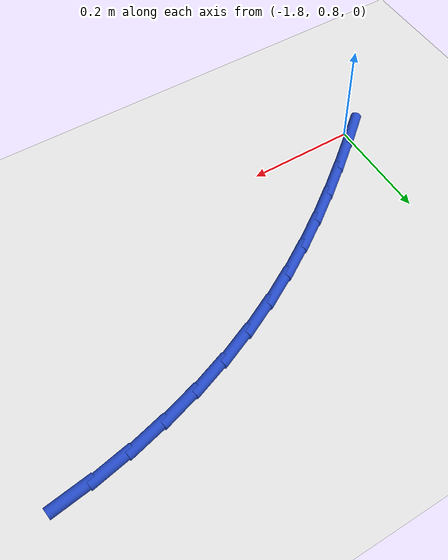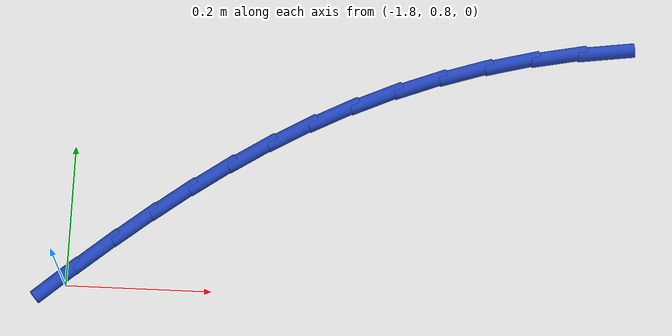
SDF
<sdf version="1.6">
 <world name="default">
  <model name="ground_plane">
   <static>1</static>
   <link name="link">
    <collision name="collision">
     <geometry><plane><normal>0 0 1</normal><size>100 100</size></plane></geometry>
     <surface><friction><ode><mu>100</mu><mu2>50</mu2></ode></friction></surface>
    </collision>
    <visual name="visual">
     <cast_shadows>0</cast_shadows>
     <geometry><plane><normal>0 0 1</normal><size>100 100</size></plane></geometry>
     <material>
      <script><uri>file://media/materials/scripts/gazebo.material</uri><name>Gazebo/WhiteGlow</name></script>
     </material>
    </visual>
   </link>
  </model>
  <model name="line">
   <link name="link_27">
    <pose>-1.0634239577203672 1.1670675608085976 0.01 0 1.57 0.13091968569776458</pose>
    <collision name="collision">
     <geometry><cylinder><radius>0.01</radius><length>0.08</length></cylinder></geometry>
    </collision>
    <visual name="visual">
     <material>
      <script><name>Gazebo/Blue</name><uri>file://media/materials/scripts/gazebo.material</uri></script>
     </material>
     <geometry><cylinder><radius>0.01</radius><length>0.08</length></cylinder></geometry>
    </visual>
   </link>
   <link name="link_28">
    <pose>-1.1293442459233956 1.158387649514622 0.01 0 1.57 0.19247990246002386</pose>
    <collision name="collision">
     <geometry><cylinder><radius>0.01</radius><length>0.08</length></cylinder></geometry>
    </collision>
    <visual name="visual">
     <material>
      <script><name>Gazebo/Blue</name><uri>file://media/materials/scripts/gazebo.material</uri></script>
     </material>
     <geometry><cylinder><radius>0.01</radius><length>0.08</length></cylinder></geometry>
    </visual>
   </link>
   <link name="link_29">
    <pose>-1.1947745047077671 1.1456357699586712 0.01 0 1.57 0.2513581036600441</pose>
    <collision name="collision">
     <geometry><cylinder><radius>0.01</radius><length>0.08</length></cylinder></geometry>
    </collision>
    <visual name="visual">
     <material>
      <script><name>Gazebo/Blue</name><uri>file://media/materials/scripts/gazebo.material</uri></script>
     </material>
     <geometry><cylinder><radius>0.01</radius><length>0.08</length></cylinder></geometry>
    </visual>
   </link>
   <link name="link_30">
    <pose>-1.2592359555957178 1.1290827735932252 0.01 0 1.57 0.3085339599397287</pose>
    <collision name="collision">
     <geometry><cylinder><radius>0.01</radius><length>0.08</length></cylinder></geometry>
    </collision>
    <visual name="visual">
     <material>
      <script><name>Gazebo/Blue</name><uri>file://media/materials/scripts/gazebo.material</uri></script>
     </material>
     <geometry><cylinder><radius>0.01</radius><length>0.08</length></cylinder></geometry>
    </visual>
   </link>
   <link name="link_31">
    <pose>-1.3222498201094839 1.1089995118707632 0.01 0 1.57 0.3649970647293606</pose>
    <collision name="collision">
     <geometry><cylinder><radius>0.01</radius><length>0.08</length></cylinder></geometry>
    </collision>
    <visual name="visual">
     <material>
      <script><name>Gazebo/Blue</name><uri>file://media/materials/scripts/gazebo.material</uri></script>
     </material>
     <geometry><cylinder><radius>0.01</radius><length>0.08</length></cylinder></geometry>
    </visual>
   </link>
   <link name="link_32">
    <pose>-1.3833373197713013 1.085656836243764 0.01 0 1.57 0.4214941630562694</pose>
    <collision name="collision">
     <geometry><cylinder><radius>0.01</radius><length>0.08</length></cylinder></geometry>
    </collision>
    <visual name="visual">
     <material>
      <script><name>Gazebo/Blue</name><uri>file://media/materials/scripts/gazebo.material</uri></script>
     </material>
     <geometry><cylinder><radius>0.01</radius><length>0.08</length></cylinder></geometry>
    </visual>
   </link>
   <link name="link_33">
    <pose>-1.44208160138882 1.059317904498243 0.01 0 1.57 0.4761015799874944</pose>
    <collision name="collision">
     <geometry><cylinder><radius>0.01</radius><length>0.08</length></cylinder></geometry>
    </collision>
    <visual name="visual">
     <material>
      <script><name>Gazebo/Blue</name><uri>file://media/materials/scripts/gazebo.material</uri></script>
     </material>
     <geometry><cylinder><radius>0.01</radius><length>0.08</length></cylinder></geometry>
    </visual>
   </link>
   <link name="link_34">
    <pose>-1.4985841389620818 1.0301814768722493 0.01 0 1.57 0.5267788156825728</pose>
    <collision name="collision">
     <geometry><cylinder><radius>0.01</radius><length>0.08</length></cylinder></geometry>
    </collision>
    <visual name="visual">
     <material>
      <script><name>Gazebo/Blue</name><uri>file://media/materials/scripts/gazebo.material</uri></script>
     </material>
     <geometry><cylinder><radius>0.01</radius><length>0.08</length></cylinder></geometry>
    </visual>
   </link>
   <link name="link_35">
    <pose>-1.5532047818911185 0.9984142127562253 0.01 0 1.57 0.5726109514112988</pose>
    <collision name="collision">
     <geometry><cylinder><radius>0.01</radius><length>0.08</length></cylinder></geometry>
    </collision>
    <visual name="visual">
     <material>
      <script><name>Gazebo/Blue</name><uri>file://media/materials/scripts/gazebo.material</uri></script>
     </material>
     <geometry><cylinder><radius>0.01</radius><length>0.08</length></cylinder></geometry>
    </visual>
   </link>
   <link name="link_36">
    <pose>-1.606305273626455 0.9641825362216693 0.01 0 1.57 0.612921804366879</pose>
    <collision name="collision">
     <geometry><cylinder><radius>0.01</radius><length>0.08</length></cylinder></geometry>
    </collision>
    <visual name="visual">
     <material>
      <script><name>Gazebo/Blue</name><uri>file://media/materials/scripts/gazebo.material</uri></script>
     </material>
     <geometry><cylinder><radius>0.01</radius><length>0.08</length></cylinder></geometry>
    </visual>
   </link>
   <link name="link_37">
    <pose>-1.6582473576186145 0.9276528713400798 0.01 0 1.57 0.6472714842918056</pose>
    <collision name="collision">
     <geometry><cylinder><radius>0.01</radius><length>0.08</length></cylinder></geometry>
    </collision>
    <visual name="visual">
     <material>
      <script><name>Gazebo/Blue</name><uri>file://media/materials/scripts/gazebo.material</uri></script>
     </material>
     <geometry><cylinder><radius>0.01</radius><length>0.08</length></cylinder></geometry>
    </visual>
   </link>
   <link name="link_38">
    <pose>-1.7093927773181217 0.8889916421829547 0.01 0 1.57 0.6754376031436558</pose>
    <collision name="collision">
     <geometry><cylinder><radius>0.01</radius><length>0.08</length></cylinder></geometry>
    </collision>
    <visual name="visual">
     <material>
      <script><name>Gazebo/Blue</name><uri>file://media/materials/scripts/gazebo.material</uri></script>
     </material>
     <geometry><cylinder><radius>0.01</radius><length>0.08</length></cylinder></geometry>
    </visual>
   </link>
   <link name="link_39">
    <pose>-1.7601032761755004 0.8483652728217927 0.01 0 1.57 0.6973817574604851</pose>
    <collision name="collision">
     <geometry><cylinder><radius>0.01</radius><length>0.08</length></cylinder></geometry>
    </collision>
    <visual name="visual">
     <material>
      <script><name>Gazebo/Blue</name><uri>file://media/materials/scripts/gazebo.material</uri></script>
     </material>
     <geometry><cylinder><radius>0.01</radius><length>0.08</length></cylinder></geometry>
    </visual>
   </link>
   <link name="link_40">
    <pose>-1.810740597641275 0.8059401873280921 0.01 0 1.57 0.7157075467357734</pose>
    <collision name="collision">
     <geometry><cylinder><radius>0.01</radius><length>0.08</length></cylinder></geometry>
    </collision>
    <visual name="visual">
     <material>
      <script><name>Gazebo/Blue</name><uri>file://media/materials/scripts/gazebo.material</uri></script>
     </material>
     <geometry><cylinder><radius>0.01</radius><length>0.08</length></cylinder></geometry>
    </visual>
   </link>
  </model>
 </world>
</sdf>
